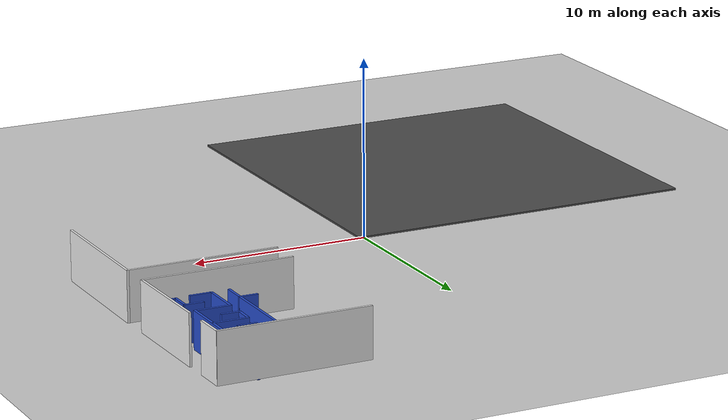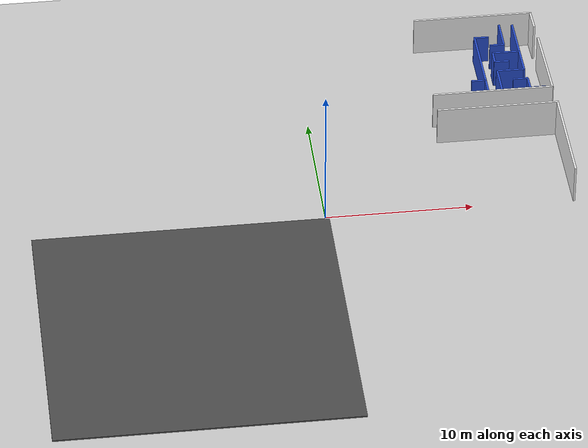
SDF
<sdf version="1.7">
 <world name="default">
  <model name="ground_plane">
   <static>1</static>
   <link name="link">
    <collision name="collision">
     <geometry><plane><normal>0 0 1</normal><size>100 100</size></plane></geometry>
     <surface><friction><ode><mu>100</mu><mu2>50</mu2></ode></friction></surface>
    </collision>
    <visual name="visual">
     <cast_shadows>0</cast_shadows>
     <geometry><plane><normal>0 0 1</normal><size>100 100</size></plane></geometry>
     <material>
      <script><uri>file://media/materials/scripts/gazebo.material</uri><name>Gazebo/Grey</name></script>
     </material>
    </visual>
    <velocity_decay><linear>0</linear><angular>0</angular></velocity_decay>
   </link>
  </model>
  <model name="asphalt_plane">
   <static>1</static>
   <link name="link">
    <collision name="collision"><geometry><box><size>20 20 0.1</size></box></geometry></collision>
    <visual name="visual">
     <cast_shadows>0</cast_shadows>
     <geometry><box><size>20 20 0.1</size></box></geometry>
     <material>
      <script>
       <uri>model://asphalt_plane/materials/scripts</uri>
       <uri>model://asphalt_plane/materials/textures</uri>
       <name>vrc/asphalt</name>
      </script>
     </material>
    </visual>
   </link>
   <pose>-9.73878 -10.1135 0 0 -0 0</pose>
  </model>
  <model name="white_wall1_clone">
   <link name="link">
    <inertial>
     <mass>1</mass>
     <inertia>
      <ixx>0.166667</ixx>
      <ixy>0</ixy>
      <ixz>0</ixz>
      <iyy>0.166667</iyy>
      <iyz>0</iyz>
      <izz>0.166667</izz>
     </inertia>
    </inertial>
    <visual name="visual">
     <geometry><box><size>7.516 0.139088 2.78993</size></box></geometry>
     <material>
      <script><name>Gazebo/White</name><uri>file://media/materials/scripts/gazebo.material</uri></script>
      <shader type="vertex"><normal_map>__default__</normal_map></shader>
      <ambient>1 1 1 1</ambient>
      <diffuse>1 1 1 1</diffuse>
      <specular>0 0 0 1</specular>
      <emissive>0 0 0 1</emissive>
     </material>
    </visual>
    <collision name="collision">
     <geometry><box><size>7.516 0.139088 2.78993</size></box></geometry>
     <surface>
      <friction>
       <ode><mu>1</mu><mu2>1</mu2><fdir1>0 0 0</fdir1><slip1>0</slip1><slip2>0</slip2></ode>
       <torsional>
        <coefficient>1</coefficient>
        <patch_radius>0</patch_radius>
        <surface_radius>0</surface_radius>
        <use_patch_radius>1</use_patch_radius>
        <ode><slip>0</slip></ode>
       </torsional>
      </friction>
      <bounce><restitution_coefficient>0</restitution_coefficient><threshold>1e+06</threshold></bounce>
      <contact>
       <collide_without_contact>0</collide_without_contact>
       <collide_without_contact_bitmask>1</collide_without_contact_bitmask>
       <collide_bitmask>1</collide_bitmask>
       <ode>
        <soft_cfm>0</soft_cfm>
        <soft_erp>0.2</soft_erp>
        <kp>1e+13</kp>
        <kd>1</kd>
        <max_vel>0.01</max_vel>
        <min_depth>0</min_depth>
       </ode>
       <bullet>
        <split_impulse>1</split_impulse>
        <split_impulse_penetration_threshold>-0.01</split_impulse_penetration_threshold>
        <soft_cfm>0</soft_cfm>
        <soft_erp>0.2</soft_erp>
        <kp>1e+13</kp>
        <kd>1</kd>
       </bullet>
      </contact>
     </surface>
    </collision>
   </link>
   <static>1</static>
   <pose>16.8632 3.54144 1.43994 -4e-06 -1e-06 -1.57184</pose>
  </model>
  <model name="white_wall8_clone_clone">
   <link name="link">
    <inertial>
     <mass>1</mass>
     <inertia>
      <ixx>0.166667</ixx>
      <ixy>0</ixy>
      <ixz>0</ixz>
      <iyy>0.166667</iyy>
      <iyz>0</iyz>
      <izz>0.166667</izz>
     </inertia>
    </inertial>
    <visual name="visual">
     <geometry><box><size>8.30741 0.139088 2.78993</size></box></geometry>
     <material>
      <script><name>Gazebo/White</name><uri>file://media/materials/scripts/gazebo.material</uri></script>
      <shader type="vertex"><normal_map>__default__</normal_map></shader>
      <ambient>1 1 1 1</ambient>
      <diffuse>1 1 1 1</diffuse>
      <specular>0 0 0 1</specular>
      <emissive>0 0 0 1</emissive>
     </material>
    </visual>
    <collision name="collision">
     <geometry><box><size>8.30741 0.139088 2.78993</size></box></geometry>
     <surface>
      <friction>
       <ode><mu>1</mu><mu2>1</mu2><fdir1>0 0 0</fdir1><slip1>0</slip1><slip2>0</slip2></ode>
       <torsional>
        <coefficient>1</coefficient>
        <patch_radius>0</patch_radius>
        <surface_radius>0</surface_radius>
        <use_patch_radius>1</use_patch_radius>
        <ode><slip>0</slip></ode>
       </torsional>
      </friction>
      <bounce><restitution_coefficient>0</restitution_coefficient><threshold>1e+06</threshold></bounce>
      <contact>
       <collide_without_contact>0</collide_without_contact>
       <collide_without_contact_bitmask>1</collide_without_contact_bitmask>
       <collide_bitmask>1</collide_bitmask>
       <ode>
        <soft_cfm>0</soft_cfm>
        <soft_erp>0.2</soft_erp>
        <kp>1e+13</kp>
        <kd>1</kd>
        <max_vel>0.01</max_vel>
        <min_depth>0</min_depth>
       </ode>
       <bullet>
        <split_impulse>1</split_impulse>
        <split_impulse_penetration_threshold>-0.01</split_impulse_penetration_threshold>
        <soft_cfm>0</soft_cfm>
        <soft_erp>0.2</soft_erp>
        <kp>1e+13</kp>
        <kd>1</kd>
       </bullet>
      </contact>
     </surface>
    </collision>
   </link>
   <static>1</static>
   <pose>12.7274 7.22395 1.43997 -1e-06 4e-06 -1.6e-05</pose>
  </model>
  <model name="white_wall3_clone_clone_1_clone_0_clone">
   <link name="link">
    <inertial>
     <mass>1</mass>
     <inertia>
      <ixx>0.166667</ixx>
      <ixy>0</ixy>
      <ixz>0</ixz>
      <iyy>0.166667</iyy>
      <iyz>0</iyz>
      <izz>0.166667</izz>
     </inertia>
    </inertial>
    <visual name="visual">
     <geometry><box><size>1.77743 0.139088 2.78993</size></box></geometry>
     <material>
      <script><name>Gazebo/White</name><uri>file://media/materials/scripts/gazebo.material</uri></script>
      <shader type="vertex"><normal_map>__default__</normal_map></shader>
      <ambient>1 1 1 1</ambient>
      <diffuse>1 1 1 1</diffuse>
      <specular>0 0 0 1</specular>
      <emissive>0 0 0 1</emissive>
     </material>
    </visual>
    <collision name="collision">
     <geometry><box><size>1.77743 0.139088 2.78993</size></box></geometry>
     <surface>
      <friction>
       <ode><mu>1</mu><mu2>1</mu2><fdir1>0 0 0</fdir1><slip1>0</slip1><slip2>0</slip2></ode>
       <torsional>
        <coefficient>1</coefficient>
        <patch_radius>0</patch_radius>
        <surface_radius>0</surface_radius>
        <use_patch_radius>1</use_patch_radius>
        <ode><slip>0</slip></ode>
       </torsional>
      </friction>
      <bounce><restitution_coefficient>0</restitution_coefficient><threshold>1e+06</threshold></bounce>
      <contact>
       <collide_without_contact>0</collide_without_contact>
       <collide_without_contact_bitmask>1</collide_without_contact_bitmask>
       <collide_bitmask>1</collide_bitmask>
       <ode>
        <soft_cfm>0</soft_cfm>
        <soft_erp>0.2</soft_erp>
        <kp>1e+13</kp>
        <kd>1</kd>
        <max_vel>0.01</max_vel>
        <min_depth>0</min_depth>
       </ode>
       <bullet>
        <split_impulse>1</split_impulse>
        <split_impulse_penetration_threshold>-0.01</split_impulse_penetration_threshold>
        <soft_cfm>0</soft_cfm>
        <soft_erp>0.2</soft_erp>
        <kp>1e+13</kp>
        <kd>1</kd>
       </bullet>
      </contact>
     </surface>
    </collision>
   </link>
   <static>1</static>
   <pose>16.6488 16.7754 1.43995 -4e-06 -1e-06 -1.5551</pose>
  </model>
  <model name="white_wall14">
   <link name="link">
    <inertial>
     <mass>1</mass>
     <inertia>
      <ixx>0.166667</ixx>
      <ixy>0</ixy>
      <ixz>0</ixz>
      <iyy>0.166667</iyy>
      <iyz>0</iyz>
      <izz>0.166667</izz>
     </inertia>
    </inertial>
    <visual name="visual">
     <geometry><box><size>5.71848 0.139088 2.78993</size></box></geometry>
     <material>
      <script><name>Gazebo/White</name><uri>file://media/materials/scripts/gazebo.material</uri></script>
      <shader type="vertex"><normal_map>__default__</normal_map></shader>
      <ambient>1 1 1 1</ambient>
      <diffuse>1 1 1 1</diffuse>
      <specular>0 0 0 1</specular>
      <emissive>0 0 0 1</emissive>
     </material>
    </visual>
    <collision name="collision">
     <geometry><box><size>5.71848 0.139088 2.78993</size></box></geometry>
     <surface>
      <friction>
       <ode><mu>1</mu><mu2>1</mu2><fdir1>0 0 0</fdir1><slip1>0</slip1><slip2>0</slip2></ode>
       <torsional>
        <coefficient>1</coefficient>
        <patch_radius>0</patch_radius>
        <surface_radius>0</surface_radius>
        <use_patch_radius>1</use_patch_radius>
        <ode><slip>0</slip></ode>
       </torsional>
      </friction>
      <bounce><restitution_coefficient>0</restitution_coefficient><threshold>1e+06</threshold></bounce>
      <contact>
       <collide_without_contact>0</collide_without_contact>
       <collide_without_contact_bitmask>1</collide_without_contact_bitmask>
       <collide_bitmask>1</collide_bitmask>
       <ode>
        <soft_cfm>0</soft_cfm>
        <soft_erp>0.2</soft_erp>
        <kp>1e+13</kp>
        <kd>1</kd>
        <max_vel>0.01</max_vel>
        <min_depth>0</min_depth>
       </ode>
       <bullet>
        <split_impulse>1</split_impulse>
        <split_impulse_penetration_threshold>-0.01</split_impulse_penetration_threshold>
        <soft_cfm>0</soft_cfm>
        <soft_erp>0.2</soft_erp>
        <kp>1e+13</kp>
        <kd>1</kd>
       </bullet>
      </contact>
     </surface>
    </collision>
   </link>
   <static>1</static>
   <pose>16.7586 11.7645 1.43994 -4e-06 -1e-06 -1.55521</pose>
  </model>
  <model name="white_wall8_clone_clone_clone">
   <link name="link">
    <inertial>
     <mass>1</mass>
     <inertia>
      <ixx>0.166667</ixx>
      <ixy>0</ixy>
      <ixz>0</ixz>
      <iyy>0.166667</iyy>
      <iyz>0</iyz>
      <izz>0.166667</izz>
     </inertia>
    </inertial>
    <visual name="visual">
     <geometry><box><size>8.30741 0.139088 2.78993</size></box></geometry>
     <material>
      <script><name>Gazebo/White</name><uri>file://media/materials/scripts/gazebo.material</uri></script>
      <shader type="vertex"><normal_map>__default__</normal_map></shader>
      <ambient>1 1 1 1</ambient>
      <diffuse>1 1 1 1</diffuse>
      <specular>0 0 0 1</specular>
      <emissive>0 0 0 1</emissive>
     </material>
    </visual>
    <collision name="collision">
     <geometry><box><size>8.30741 0.139088 2.78993</size></box></geometry>
     <surface>
      <friction>
       <ode><mu>1</mu><mu2>1</mu2><fdir1>0 0 0</fdir1><slip1>0</slip1><slip2>0</slip2></ode>
       <torsional>
        <coefficient>1</coefficient>
        <patch_radius>0</patch_radius>
        <surface_radius>0</surface_radius>
        <use_patch_radius>1</use_patch_radius>
        <ode><slip>0</slip></ode>
       </torsional>
      </friction>
      <bounce><restitution_coefficient>0</restitution_coefficient><threshold>1e+06</threshold></bounce>
      <contact>
       <collide_without_contact>0</collide_without_contact>
       <collide_without_contact_bitmask>1</collide_without_contact_bitmask>
       <collide_bitmask>1</collide_bitmask>
       <ode>
        <soft_cfm>0</soft_cfm>
        <soft_erp>0.2</soft_erp>
        <kp>1e+13</kp>
        <kd>1</kd>
        <max_vel>0.01</max_vel>
        <min_depth>0</min_depth>
       </ode>
       <bullet>
        <split_impulse>1</split_impulse>
        <split_impulse_penetration_threshold>-0.01</split_impulse_penetration_threshold>
        <soft_cfm>0</soft_cfm>
        <soft_erp>0.2</soft_erp>
        <kp>1e+13</kp>
        <kd>1</kd>
       </bullet>
      </contact>
     </surface>
    </collision>
   </link>
   <static>1</static>
   <pose>12.6764 8.97226 1.43997 -1e-06 4e-06 -1.6e-05</pose>
  </model>
  <model name="white_wall8_clone_clone_clone_0">
   <link name="link">
    <inertial>
     <mass>1</mass>
     <inertia>
      <ixx>0.166667</ixx>
      <ixy>0</ixy>
      <ixz>0</ixz>
      <iyy>0.166667</iyy>
      <iyz>0</iyz>
      <izz>0.166667</izz>
     </inertia>
    </inertial>
    <visual name="visual">
     <geometry><box><size>8.30741 0.139088 2.78993</size></box></geometry>
     <material>
      <script><name>Gazebo/White</name><uri>file://media/materials/scripts/gazebo.material</uri></script>
      <shader type="vertex"><normal_map>__default__</normal_map></shader>
      <ambient>1 1 1 1</ambient>
      <diffuse>1 1 1 1</diffuse>
      <specular>0 0 0 1</specular>
      <emissive>0 0 0 1</emissive>
     </material>
    </visual>
    <collision name="collision">
     <geometry><box><size>8.30741 0.139088 2.78993</size></box></geometry>
     <surface>
      <friction>
       <ode><mu>1</mu><mu2>1</mu2><fdir1>0 0 0</fdir1><slip1>0</slip1><slip2>0</slip2></ode>
       <torsional>
        <coefficient>1</coefficient>
        <patch_radius>0</patch_radius>
        <surface_radius>0</surface_radius>
        <use_patch_radius>1</use_patch_radius>
        <ode><slip>0</slip></ode>
       </torsional>
      </friction>
      <bounce><restitution_coefficient>0</restitution_coefficient><threshold>1e+06</threshold></bounce>
      <contact>
       <collide_without_contact>0</collide_without_contact>
       <collide_without_contact_bitmask>1</collide_without_contact_bitmask>
       <collide_bitmask>1</collide_bitmask>
       <ode>
        <soft_cfm>0</soft_cfm>
        <soft_erp>0.2</soft_erp>
        <kp>1e+13</kp>
        <kd>1</kd>
        <max_vel>0.01</max_vel>
        <min_depth>0</min_depth>
       </ode>
       <bullet>
        <split_impulse>1</split_impulse>
        <split_impulse_penetration_threshold>-0.01</split_impulse_penetration_threshold>
        <soft_cfm>0</soft_cfm>
        <soft_erp>0.2</soft_erp>
        <kp>1e+13</kp>
        <kd>1</kd>
       </bullet>
      </contact>
     </surface>
    </collision>
   </link>
   <static>1</static>
   <pose>12.5374 17.6 1.43997 -1e-06 4e-06 -1.6e-05</pose>
  </model>
  <model name="blue_wall_1_01_clone_clone">
   <link name="link">
    <inertial>
     <mass>1.23974</mass>
     <inertia>
      <ixx>1.75708</ixx>
      <ixy>0</ixy>
      <ixz>0</ixz>
      <iyy>0.935051</iyy>
      <iyz>0</iyz>
      <izz>0.826375</izz>
     </inertia>
    </inertial>
    <visual name="visual">
     <geometry><box><size>0.145074 4.87759 3.00495</size></box></geometry>
     <material>
      <script><name>Gazebo/Blue</name><uri>file://media/materials/scripts/gazebo.material</uri></script>
      <shader type="vertex"><normal_map>__default__</normal_map></shader>
      <ambient>0 0 1 1</ambient>
      <diffuse>0 0 1 1</diffuse>
      <specular>0.1 0.1 0.1 1</specular>
      <emissive>0 0 0 1</emissive>
     </material>
    </visual>
    <collision name="collision">
     <geometry><box><size>0.145074 4.87759 3.00495</size></box></geometry>
     <surface>
      <friction>
       <ode><mu>1</mu><mu2>1</mu2><fdir1>0 0 0</fdir1><slip1>0</slip1><slip2>0</slip2></ode>
       <torsional>
        <coefficient>1</coefficient>
        <patch_radius>0</patch_radius>
        <surface_radius>0</surface_radius>
        <use_patch_radius>1</use_patch_radius>
        <ode><slip>0</slip></ode>
       </torsional>
      </friction>
      <bounce><restitution_coefficient>0</restitution_coefficient><threshold>1e+06</threshold></bounce>
      <contact>
       <collide_without_contact>0</collide_without_contact>
       <collide_without_contact_bitmask>1</collide_without_contact_bitmask>
       <collide_bitmask>1</collide_bitmask>
       <ode>
        <soft_cfm>0</soft_cfm>
        <soft_erp>0.2</soft_erp>
        <kp>1e+13</kp>
        <kd>1</kd>
        <max_vel>0.01</max_vel>
        <min_depth>0</min_depth>
       </ode>
       <bullet>
        <split_impulse>1</split_impulse>
        <split_impulse_penetration_threshold>-0.01</split_impulse_penetration_threshold>
        <soft_cfm>0</soft_cfm>
        <soft_erp>0.2</soft_erp>
        <kp>1e+13</kp>
        <kd>1</kd>
       </bullet>
      </contact>
     </surface>
    </collision>
   </link>
   <static>1</static>
   <pose>12.5229 13.7327 0.5 0 -0 0.007046</pose>
  </model>
  <model name="blue_wall_161_clone_clone">
   <link name="link">
    <inertial>
     <mass>0.958307</mass>
     <inertia>
      <ixx>0.810551</ixx>
      <ixy>0</ixy>
      <ixz>0</ixz>
      <iyy>0.722785</iyy>
      <iyz>0</iyz>
      <izz>0.0911277</izz>
     </inertia>
    </inertial>
    <visual name="visual">
     <geometry><box><size>0.145074 1.05833 3.00495</size></box></geometry>
     <material>
      <script><name>Gazebo/Blue</name><uri>file://media/materials/scripts/gazebo.material</uri></script>
      <shader type="vertex"><normal_map>__default__</normal_map></shader>
      <ambient>0 0 1 1</ambient>
      <diffuse>0 0 1 1</diffuse>
      <specular>0.1 0.1 0.1 1</specular>
      <emissive>0 0 0 1</emissive>
     </material>
    </visual>
    <collision name="collision">
     <geometry><box><size>0.145074 1.05833 3.00495</size></box></geometry>
     <surface>
      <friction>
       <ode><mu>1</mu><mu2>1</mu2><fdir1>0 0 0</fdir1><slip1>0</slip1><slip2>0</slip2></ode>
       <torsional>
        <coefficient>1</coefficient>
        <patch_radius>0</patch_radius>
        <surface_radius>0</surface_radius>
        <use_patch_radius>1</use_patch_radius>
        <ode><slip>0</slip></ode>
       </torsional>
      </friction>
      <bounce><restitution_coefficient>0</restitution_coefficient><threshold>1e+06</threshold></bounce>
      <contact>
       <collide_without_contact>0</collide_without_contact>
       <collide_without_contact_bitmask>1</collide_without_contact_bitmask>
       <collide_bitmask>1</collide_bitmask>
       <ode>
        <soft_cfm>0</soft_cfm>
        <soft_erp>0.2</soft_erp>
        <kp>1e+13</kp>
        <kd>1</kd>
        <max_vel>0.01</max_vel>
        <min_depth>0</min_depth>
       </ode>
       <bullet>
        <split_impulse>1</split_impulse>
        <split_impulse_penetration_threshold>-0.01</split_impulse_penetration_threshold>
        <soft_cfm>0</soft_cfm>
        <soft_erp>0.2</soft_erp>
        <kp>1e+13</kp>
        <kd>1</kd>
       </bullet>
      </contact>
     </surface>
    </collision>
   </link>
   <static>1</static>
   <pose>12.0857 11.2765 0.5 0 -0 1.55679</pose>
  </model>
  <model name="blue_wall_161_clone_0_clone">
   <link name="link">
    <inertial>
     <mass>0.958307</mass>
     <inertia>
      <ixx>0.810551</ixx>
      <ixy>0</ixy>
      <ixz>0</ixz>
      <iyy>0.722785</iyy>
      <iyz>0</iyz>
      <izz>0.0911277</izz>
     </inertia>
    </inertial>
    <visual name="visual">
     <geometry><box><size>0.145074 1.05833 3.00495</size></box></geometry>
     <material>
      <script><name>Gazebo/Blue</name><uri>file://media/materials/scripts/gazebo.material</uri></script>
      <shader type="vertex"><normal_map>__default__</normal_map></shader>
      <ambient>0 0 1 1</ambient>
      <diffuse>0 0 1 1</diffuse>
      <specular>0.1 0.1 0.1 1</specular>
      <emissive>0 0 0 1</emissive>
     </material>
    </visual>
    <collision name="collision">
     <geometry><box><size>0.145074 1.05833 3.00495</size></box></geometry>
     <surface>
      <friction>
       <ode><mu>1</mu><mu2>1</mu2><fdir1>0 0 0</fdir1><slip1>0</slip1><slip2>0</slip2></ode>
       <torsional>
        <coefficient>1</coefficient>
        <patch_radius>0</patch_radius>
        <surface_radius>0</surface_radius>
        <use_patch_radius>1</use_patch_radius>
        <ode><slip>0</slip></ode>
       </torsional>
      </friction>
      <bounce><restitution_coefficient>0</restitution_coefficient><threshold>1e+06</threshold></bounce>
      <contact>
       <collide_without_contact>0</collide_without_contact>
       <collide_without_contact_bitmask>1</collide_without_contact_bitmask>
       <collide_bitmask>1</collide_bitmask>
       <ode>
        <soft_cfm>0</soft_cfm>
        <soft_erp>0.2</soft_erp>
        <kp>1e+13</kp>
        <kd>1</kd>
        <max_vel>0.01</max_vel>
        <min_depth>0</min_depth>
       </ode>
       <bullet>
        <split_impulse>1</split_impulse>
        <split_impulse_penetration_threshold>-0.01</split_impulse_penetration_threshold>
        <soft_cfm>0</soft_cfm>
        <soft_erp>0.2</soft_erp>
        <kp>1e+13</kp>
        <kd>1</kd>
       </bullet>
      </contact>
     </surface>
    </collision>
   </link>
   <static>1</static>
   <pose>12.9711 16.1912 0.5 0 -0 1.55679</pose>
  </model>
  <model name="blue_wall_2_0_clone_0_clone_clone_clone_clone_clone">
   <link name="link">
    <inertial>
     <mass>1.23974</mass>
     <inertia>
      <ixx>1.75708</ixx>
      <ixy>0</ixy>
      <ixz>0</ixz>
      <iyy>0.935051</iyy>
      <iyz>0</iyz>
      <izz>0.826375</izz>
     </inertia>
    </inertial>
    <visual name="visual">
     <geometry><box><size>0.145074 2.28839 3.00495</size></box></geometry>
     <material>
      <script><name>Gazebo/Blue</name><uri>file://media/materials/scripts/gazebo.material</uri></script>
      <shader type="vertex"><normal_map>__default__</normal_map></shader>
      <ambient>0 0 1 1</ambient>
      <diffuse>0 0 1 1</diffuse>
      <specular>0.1 0.1 0.1 1</specular>
      <emissive>0 0 0 1</emissive>
     </material>
    </visual>
    <collision name="collision">
     <geometry><box><size>0.145074 2.28839 3.00495</size></box></geometry>
     <surface>
      <friction>
       <ode><mu>1</mu><mu2>1</mu2><fdir1>0 0 0</fdir1><slip1>0</slip1><slip2>0</slip2></ode>
       <torsional>
        <coefficient>1</coefficient>
        <patch_radius>0</patch_radius>
        <surface_radius>0</surface_radius>
        <use_patch_radius>1</use_patch_radius>
        <ode><slip>0</slip></ode>
       </torsional>
      </friction>
      <bounce><restitution_coefficient>0</restitution_coefficient><threshold>1e+06</threshold></bounce>
      <contact>
       <collide_without_contact>0</collide_without_contact>
       <collide_without_contact_bitmask>1</collide_without_contact_bitmask>
       <collide_bitmask>1</collide_bitmask>
       <ode>
        <soft_cfm>0</soft_cfm>
        <soft_erp>0.2</soft_erp>
        <kp>1e+13</kp>
        <kd>1</kd>
        <max_vel>0.01</max_vel>
        <min_depth>0</min_depth>
       </ode>
       <bullet>
        <split_impulse>1</split_impulse>
        <split_impulse_penetration_threshold>-0.01</split_impulse_penetration_threshold>
        <soft_cfm>0</soft_cfm>
        <soft_erp>0.2</soft_erp>
        <kp>1e+13</kp>
        <kd>1</kd>
       </bullet>
      </contact>
     </surface>
    </collision>
   </link>
   <static>1</static>
   <pose>14.4301 16.3777 0.5 0 -0 0</pose>
  </model>
  <model name="blue_wall_161_clone_0_clone_clone">
   <link name="link">
    <inertial>
     <mass>0.958307</mass>
     <inertia>
      <ixx>0.810551</ixx>
      <ixy>0</ixy>
      <ixz>0</ixz>
      <iyy>0.722785</iyy>
      <iyz>0</iyz>
      <izz>0.0911277</izz>
     </inertia>
    </inertial>
    <visual name="visual">
     <geometry><box><size>0.145074 1.05833 3.00495</size></box></geometry>
     <material>
      <script><name>Gazebo/Blue</name><uri>file://media/materials/scripts/gazebo.material</uri></script>
      <shader type="vertex"><normal_map>__default__</normal_map></shader>
      <ambient>0 0 1 1</ambient>
      <diffuse>0 0 1 1</diffuse>
      <specular>0.1 0.1 0.1 1</specular>
      <emissive>0 0 0 1</emissive>
     </material>
    </visual>
    <collision name="collision">
     <geometry><box><size>0.145074 1.05833 3.00495</size></box></geometry>
     <surface>
      <friction>
       <ode><mu>1</mu><mu2>1</mu2><fdir1>0 0 0</fdir1><slip1>0</slip1><slip2>0</slip2></ode>
       <torsional>
        <coefficient>1</coefficient>
        <patch_radius>0</patch_radius>
        <surface_radius>0</surface_radius>
        <use_patch_radius>1</use_patch_radius>
        <ode><slip>0</slip></ode>
       </torsional>
      </friction>
      <bounce><restitution_coefficient>0</restitution_coefficient><threshold>1e+06</threshold></bounce>
      <contact>
       <collide_without_contact>0</collide_without_contact>
       <collide_without_contact_bitmask>1</collide_without_contact_bitmask>
       <collide_bitmask>1</collide_bitmask>
       <ode>
        <soft_cfm>0</soft_cfm>
        <soft_erp>0.2</soft_erp>
        <kp>1e+13</kp>
        <kd>1</kd>
        <max_vel>0.01</max_vel>
        <min_depth>0</min_depth>
       </ode>
       <bullet>
        <split_impulse>1</split_impulse>
        <split_impulse_penetration_threshold>-0.01</split_impulse_penetration_threshold>
        <soft_cfm>0</soft_cfm>
        <soft_erp>0.2</soft_erp>
        <kp>1e+13</kp>
        <kd>1</kd>
       </bullet>
      </contact>
     </surface>
    </collision>
   </link>
   <static>1</static>
   <pose>13.9611 15.2156 0.5 0 -0 1.55679</pose>
  </model>
  <model name="blue_wall_211">
   <link name="link">
    <inertial>
     <mass>0.855287</mass>
     <inertia>
      <ixx>0.908968</ixx>
      <ixy>0</ixy>
      <ixz>0</ixz>
      <iyy>0.645084</iyy>
      <iyz>0</iyz>
      <izz>0.266884</izz>
     </inertia>
    </inertial>
    <visual name="visual">
     <geometry><box><size>0.145074 1.92962 3.00495</size></box></geometry>
     <material>
      <script><name>Gazebo/Blue</name><uri>file://media/materials/scripts/gazebo.material</uri></script>
      <shader type="vertex"><normal_map>__default__</normal_map></shader>
      <ambient>0 0 1 1</ambient>
      <diffuse>0 0 1 1</diffuse>
      <specular>0.1 0.1 0.1 1</specular>
      <emissive>0 0 0 1</emissive>
     </material>
    </visual>
    <collision name="collision">
     <geometry><box><size>0.145074 1.92962 3.00495</size></box></geometry>
     <surface>
      <friction>
       <ode><mu>1</mu><mu2>1</mu2><fdir1>0 0 0</fdir1><slip1>0</slip1><slip2>0</slip2></ode>
       <torsional>
        <coefficient>1</coefficient>
        <patch_radius>0</patch_radius>
        <surface_radius>0</surface_radius>
        <use_patch_radius>1</use_patch_radius>
        <ode><slip>0</slip></ode>
       </torsional>
      </friction>
      <bounce><restitution_coefficient>0</restitution_coefficient><threshold>1e+06</threshold></bounce>
      <contact>
       <collide_without_contact>0</collide_without_contact>
       <collide_without_contact_bitmask>1</collide_without_contact_bitmask>
       <collide_bitmask>1</collide_bitmask>
       <ode>
        <soft_cfm>0</soft_cfm>
        <soft_erp>0.2</soft_erp>
        <kp>1e+13</kp>
        <kd>1</kd>
        <max_vel>0.01</max_vel>
        <min_depth>0</min_depth>
       </ode>
       <bullet>
        <split_impulse>1</split_impulse>
        <split_impulse_penetration_threshold>-0.01</split_impulse_penetration_threshold>
        <soft_cfm>0</soft_cfm>
        <soft_erp>0.2</soft_erp>
        <kp>1e+13</kp>
        <kd>1</kd>
       </bullet>
      </contact>
     </surface>
    </collision>
   </link>
   <static>1</static>
   <pose>14.4153 14.3219 0.5 0 -0 1.55679</pose>
  </model>
  <model name="blue_wall_161_clone_0_clone_clone_clone">
   <link name="link">
    <inertial>
     <mass>0.958307</mass>
     <inertia>
      <ixx>0.810551</ixx>
      <ixy>0</ixy>
      <ixz>0</ixz>
      <iyy>0.722785</iyy>
      <iyz>0</iyz>
      <izz>0.0911277</izz>
     </inertia>
    </inertial>
    <visual name="visual">
     <geometry><box><size>0.145074 1.05833 3.00495</size></box></geometry>
     <material>
      <script><name>Gazebo/Blue</name><uri>file://media/materials/scripts/gazebo.material</uri></script>
      <shader type="vertex"><normal_map>__default__</normal_map></shader>
      <ambient>0 0 1 1</ambient>
      <diffuse>0 0 1 1</diffuse>
      <specular>0.1 0.1 0.1 1</specular>
      <emissive>0 0 0 1</emissive>
     </material>
    </visual>
    <collision name="collision">
     <geometry><box><size>0.145074 1.05833 3.00495</size></box></geometry>
     <surface>
      <friction>
       <ode><mu>1</mu><mu2>1</mu2><fdir1>0 0 0</fdir1><slip1>0</slip1><slip2>0</slip2></ode>
       <torsional>
        <coefficient>1</coefficient>
        <patch_radius>0</patch_radius>
        <surface_radius>0</surface_radius>
        <use_patch_radius>1</use_patch_radius>
        <ode><slip>0</slip></ode>
       </torsional>
      </friction>
      <bounce><restitution_coefficient>0</restitution_coefficient><threshold>1e+06</threshold></bounce>
      <contact>
       <collide_without_contact>0</collide_without_contact>
       <collide_without_contact_bitmask>1</collide_without_contact_bitmask>
       <collide_bitmask>1</collide_bitmask>
       <ode>
        <soft_cfm>0</soft_cfm>
        <soft_erp>0.2</soft_erp>
        <kp>1e+13</kp>
        <kd>1</kd>
        <max_vel>0.01</max_vel>
        <min_depth>0</min_depth>
       </ode>
       <bullet>
        <split_impulse>1</split_impulse>
        <split_impulse_penetration_threshold>-0.01</split_impulse_penetration_threshold>
        <soft_cfm>0</soft_cfm>
        <soft_erp>0.2</soft_erp>
        <kp>1e+13</kp>
        <kd>1</kd>
       </bullet>
      </contact>
     </surface>
    </collision>
   </link>
   <static>1</static>
   <pose>13.963 13.2926 0.5 0 -0 1.55679</pose>
  </model>
  <model name="blue_wall_211_clone">
   <link name="link">
    <inertial>
     <mass>0.855287</mass>
     <inertia>
      <ixx>0.908968</ixx>
      <ixy>0</ixy>
      <ixz>0</ixz>
      <iyy>0.645084</iyy>
      <iyz>0</iyz>
      <izz>0.266884</izz>
     </inertia>
    </inertial>
    <visual name="visual">
     <geometry><box><size>0.145074 1.92962 3.00495</size></box></geometry>
     <material>
      <script><name>Gazebo/Blue</name><uri>file://media/materials/scripts/gazebo.material</uri></script>
      <shader type="vertex"><normal_map>__default__</normal_map></shader>
      <ambient>0 0 1 1</ambient>
      <diffuse>0 0 1 1</diffuse>
      <specular>0.1 0.1 0.1 1</specular>
      <emissive>0 0 0 1</emissive>
     </material>
    </visual>
    <collision name="collision">
     <geometry><box><size>0.145074 1.92962 3.00495</size></box></geometry>
     <surface>
      <friction>
       <ode><mu>1</mu><mu2>1</mu2><fdir1>0 0 0</fdir1><slip1>0</slip1><slip2>0</slip2></ode>
       <torsional>
        <coefficient>1</coefficient>
        <patch_radius>0</patch_radius>
        <surface_radius>0</surface_radius>
        <use_patch_radius>1</use_patch_radius>
        <ode><slip>0</slip></ode>
       </torsional>
      </friction>
      <bounce><restitution_coefficient>0</restitution_coefficient><threshold>1e+06</threshold></bounce>
      <contact>
       <collide_without_contact>0</collide_without_contact>
       <collide_without_contact_bitmask>1</collide_without_contact_bitmask>
       <collide_bitmask>1</collide_bitmask>
       <ode>
        <soft_cfm>0</soft_cfm>
        <soft_erp>0.2</soft_erp>
        <kp>1e+13</kp>
        <kd>1</kd>
        <max_vel>0.01</max_vel>
        <min_depth>0</min_depth>
       </ode>
       <bullet>
        <split_impulse>1</split_impulse>
        <split_impulse_penetration_threshold>-0.01</split_impulse_penetration_threshold>
        <soft_cfm>0</soft_cfm>
        <soft_erp>0.2</soft_erp>
        <kp>1e+13</kp>
        <kd>1</kd>
       </bullet>
      </contact>
     </surface>
    </collision>
   </link>
   <static>1</static>
   <pose>14.4016 12.239 0.5 0 -0 1.55679</pose>
  </model>
  <model name="blue_wall_1_01_clone1">
   <link name="link">
    <inertial>
     <mass>1.33974</mass>
     <inertia><ixx>4.11002</ixx><ixy>0</ixy><ixz>0</ixz><iyy>1.01047</iyy><iyz>0</iyz><izz>3.10424</izz></inertia>
    </inertial>
    <pose>0 -0.329668 0 0 -0 0</pose>
    <visual name="visual">
     <geometry><box><size>0.145074 5.27102 3.00495</size></box></geometry>
     <material>
      <script><name>Gazebo/Blue</name><uri>file://media/materials/scripts/gazebo.material</uri></script>
      <shader type="vertex"><normal_map>__default__</normal_map></shader>
      <ambient>0 0 1 1</ambient>
      <diffuse>0 0 1 1</diffuse>
      <specular>0.1 0.1 0.1 1</specular>
      <emissive>0 0 0 1</emissive>
     </material>
    </visual>
    <collision name="collision">
     <geometry><box><size>0.145074 5.27102 3.00495</size></box></geometry>
     <surface>
      <friction>
       <ode><mu>1</mu><mu2>1</mu2><fdir1>0 0 0</fdir1><slip1>0</slip1><slip2>0</slip2></ode>
       <torsional>
        <coefficient>1</coefficient>
        <patch_radius>0</patch_radius>
        <surface_radius>0</surface_radius>
        <use_patch_radius>1</use_patch_radius>
        <ode><slip>0</slip></ode>
       </torsional>
      </friction>
      <bounce><restitution_coefficient>0</restitution_coefficient><threshold>1e+06</threshold></bounce>
      <contact>
       <collide_without_contact>0</collide_without_contact>
       <collide_without_contact_bitmask>1</collide_without_contact_bitmask>
       <collide_bitmask>1</collide_bitmask>
       <ode>
        <soft_cfm>0</soft_cfm>
        <soft_erp>0.2</soft_erp>
        <kp>1e+13</kp>
        <kd>1</kd>
        <max_vel>0.01</max_vel>
        <min_depth>0</min_depth>
       </ode>
       <bullet>
        <split_impulse>1</split_impulse>
        <split_impulse_penetration_threshold>-0.01</split_impulse_penetration_threshold>
        <soft_cfm>0</soft_cfm>
        <soft_erp>0.2</soft_erp>
        <kp>1e+13</kp>
        <kd>1</kd>
       </bullet>
      </contact>
     </surface>
    </collision>
   </link>
   <static>1</static>
   <pose>15.3651 15.1102 0.5 0 -0 0.007046</pose>
  </model>
  <model name="blue_wall_161_clone_0_clone_clone_0_clone">
   <link name="link">
    <inertial>
     <mass>0.958307</mass>
     <inertia>
      <ixx>0.810551</ixx>
      <ixy>0</ixy>
      <ixz>0</ixz>
      <iyy>0.722785</iyy>
      <iyz>0</iyz>
      <izz>0.0911277</izz>
     </inertia>
    </inertial>
    <visual name="visual">
     <geometry><box><size>0.145074 1.05833 3.00495</size></box></geometry>
     <material>
      <script><name>Gazebo/Blue</name><uri>file://media/materials/scripts/gazebo.material</uri></script>
      <shader type="vertex"><normal_map>__default__</normal_map></shader>
      <ambient>0 0 1 1</ambient>
      <diffuse>0 0 1 1</diffuse>
      <specular>0.1 0.1 0.1 1</specular>
      <emissive>0 0 0 1</emissive>
     </material>
    </visual>
    <collision name="collision">
     <geometry><box><size>0.145074 1.05833 3.00495</size></box></geometry>
     <surface>
      <friction>
       <ode><mu>1</mu><mu2>1</mu2><fdir1>0 0 0</fdir1><slip1>0</slip1><slip2>0</slip2></ode>
       <torsional>
        <coefficient>1</coefficient>
        <patch_radius>0</patch_radius>
        <surface_radius>0</surface_radius>
        <use_patch_radius>1</use_patch_radius>
        <ode><slip>0</slip></ode>
       </torsional>
      </friction>
      <bounce><restitution_coefficient>0</restitution_coefficient><threshold>1e+06</threshold></bounce>
      <contact>
       <collide_without_contact>0</collide_without_contact>
       <collide_without_contact_bitmask>1</collide_without_contact_bitmask>
       <collide_bitmask>1</collide_bitmask>
       <ode>
        <soft_cfm>0</soft_cfm>
        <soft_erp>0.2</soft_erp>
        <kp>1e+13</kp>
        <kd>1</kd>
        <max_vel>0.01</max_vel>
        <min_depth>0</min_depth>
       </ode>
       <bullet>
        <split_impulse>1</split_impulse>
        <split_impulse_penetration_threshold>-0.01</split_impulse_penetration_threshold>
        <soft_cfm>0</soft_cfm>
        <soft_erp>0.2</soft_erp>
        <kp>1e+13</kp>
        <kd>1</kd>
       </bullet>
      </contact>
     </surface>
    </collision>
   </link>
   <static>1</static>
   <pose>13.4995 13.8234 0.5 0 0 -0.01548</pose>
  </model>
  <model name="blue_wall_201_clone_clone_clone">
   <link name="link">
    <inertial>
     <mass>1.23974</mass>
     <inertia>
      <ixx>1.75708</ixx>
      <ixy>0</ixy>
      <ixz>0</ixz>
      <iyy>0.935051</iyy>
      <iyz>0</iyz>
      <izz>0.826375</izz>
     </inertia>
    </inertial>
    <visual name="visual">
     <geometry><box><size>0.145074 1.26663 3.00495</size></box></geometry>
     <material>
      <script><name>Gazebo/Blue</name><uri>file://media/materials/scripts/gazebo.material</uri></script>
      <shader type="vertex"><normal_map>__default__</normal_map></shader>
      <ambient>0 0 1 1</ambient>
      <diffuse>0 0 1 1</diffuse>
      <specular>0.1 0.1 0.1 1</specular>
      <emissive>0 0 0 1</emissive>
     </material>
    </visual>
    <collision name="collision">
     <geometry><box><size>0.145074 1.26663 3.00495</size></box></geometry>
     <surface>
      <friction>
       <ode><mu>1</mu><mu2>1</mu2><fdir1>0 0 0</fdir1><slip1>0</slip1><slip2>0</slip2></ode>
       <torsional>
        <coefficient>1</coefficient>
        <patch_radius>0</patch_radius>
        <surface_radius>0</surface_radius>
        <use_patch_radius>1</use_patch_radius>
        <ode><slip>0</slip></ode>
       </torsional>
      </friction>
      <bounce><restitution_coefficient>0</restitution_coefficient><threshold>1e+06</threshold></bounce>
      <contact>
       <collide_without_contact>0</collide_without_contact>
       <collide_without_contact_bitmask>1</collide_without_contact_bitmask>
       <collide_bitmask>1</collide_bitmask>
       <ode>
        <soft_cfm>0</soft_cfm>
        <soft_erp>0.2</soft_erp>
        <kp>1e+13</kp>
        <kd>1</kd>
        <max_vel>0.01</max_vel>
        <min_depth>0</min_depth>
       </ode>
       <bullet>
        <split_impulse>1</split_impulse>
        <split_impulse_penetration_threshold>-0.01</split_impulse_penetration_threshold>
        <soft_cfm>0</soft_cfm>
        <soft_erp>0.2</soft_erp>
        <kp>1e+13</kp>
        <kd>1</kd>
       </bullet>
      </contact>
     </surface>
    </collision>
   </link>
   <static>1</static>
   <pose>12.5395 10.5913 0.5 0 -0 0</pose>
  </model>
  <model name="blue_wall_2_0_clone_0_clone_clone_clone_clone_clone_0">
   <link name="link">
    <inertial>
     <mass>1.23974</mass>
     <inertia>
      <ixx>1.75708</ixx>
      <ixy>0</ixy>
      <ixz>0</ixz>
      <iyy>0.935051</iyy>
      <iyz>0</iyz>
      <izz>0.826375</izz>
     </inertia>
    </inertial>
    <visual name="visual">
     <geometry><box><size>0.145074 2.28839 3.00495</size></box></geometry>
     <material>
      <script><name>Gazebo/Blue</name><uri>file://media/materials/scripts/gazebo.material</uri></script>
      <shader type="vertex"><normal_map>__default__</normal_map></shader>
      <ambient>0 0 1 1</ambient>
      <diffuse>0 0 1 1</diffuse>
      <specular>0.1 0.1 0.1 1</specular>
      <emissive>0 0 0 1</emissive>
     </material>
    </visual>
    <collision name="collision">
     <geometry><box><size>0.145074 2.28839 3.00495</size></box></geometry>
     <surface>
      <friction>
       <ode><mu>1</mu><mu2>1</mu2><fdir1>0 0 0</fdir1><slip1>0</slip1><slip2>0</slip2></ode>
       <torsional>
        <coefficient>1</coefficient>
        <patch_radius>0</patch_radius>
        <surface_radius>0</surface_radius>
        <use_patch_radius>1</use_patch_radius>
        <ode><slip>0</slip></ode>
       </torsional>
      </friction>
      <bounce><restitution_coefficient>0</restitution_coefficient><threshold>1e+06</threshold></bounce>
      <contact>
       <collide_without_contact>0</collide_without_contact>
       <collide_without_contact_bitmask>1</collide_without_contact_bitmask>
       <collide_bitmask>1</collide_bitmask>
       <ode>
        <soft_cfm>0</soft_cfm>
        <soft_erp>0.2</soft_erp>
        <kp>1e+13</kp>
        <kd>1</kd>
        <max_vel>0.01</max_vel>
        <min_depth>0</min_depth>
       </ode>
       <bullet>
        <split_impulse>1</split_impulse>
        <split_impulse_penetration_threshold>-0.01</split_impulse_penetration_threshold>
        <soft_cfm>0</soft_cfm>
        <soft_erp>0.2</soft_erp>
        <kp>1e+13</kp>
        <kd>1</kd>
       </bullet>
      </contact>
     </surface>
    </collision>
   </link>
   <static>1</static>
   <pose>13.5037 11.1098 0.5 0 -0 0</pose>
  </model>
  <model name="blue_wall_161_clone_0_clone_clone_clone_clone">
   <link name="link">
    <inertial>
     <mass>0.958307</mass>
     <inertia>
      <ixx>0.810551</ixx>
      <ixy>0</ixy>
      <ixz>0</ixz>
      <iyy>0.722785</iyy>
      <iyz>0</iyz>
      <izz>0.0911277</izz>
     </inertia>
    </inertial>
    <visual name="visual">
     <geometry><box><size>0.145074 1.05833 3.00495</size></box></geometry>
     <material>
      <script><name>Gazebo/Blue</name><uri>file://media/materials/scripts/gazebo.material</uri></script>
      <shader type="vertex"><normal_map>__default__</normal_map></shader>
      <ambient>0 0 1 1</ambient>
      <diffuse>0 0 1 1</diffuse>
      <specular>0.1 0.1 0.1 1</specular>
      <emissive>0 0 0 1</emissive>
     </material>
    </visual>
    <collision name="collision">
     <geometry><box><size>0.145074 1.05833 3.00495</size></box></geometry>
     <surface>
      <friction>
       <ode><mu>1</mu><mu2>1</mu2><fdir1>0 0 0</fdir1><slip1>0</slip1><slip2>0</slip2></ode>
       <torsional>
        <coefficient>1</coefficient>
        <patch_radius>0</patch_radius>
        <surface_radius>0</surface_radius>
        <use_patch_radius>1</use_patch_radius>
        <ode><slip>0</slip></ode>
       </torsional>
      </friction>
      <bounce><restitution_coefficient>0</restitution_coefficient><threshold>1e+06</threshold></bounce>
      <contact>
       <collide_without_contact>0</collide_without_contact>
       <collide_without_contact_bitmask>1</collide_without_contact_bitmask>
       <collide_bitmask>1</collide_bitmask>
       <ode>
        <soft_cfm>0</soft_cfm>
        <soft_erp>0.2</soft_erp>
        <kp>1e+13</kp>
        <kd>1</kd>
        <max_vel>0.01</max_vel>
        <min_depth>0</min_depth>
       </ode>
       <bullet>
        <split_impulse>1</split_impulse>
        <split_impulse_penetration_threshold>-0.01</split_impulse_penetration_threshold>
        <soft_cfm>0</soft_cfm>
        <soft_erp>0.2</soft_erp>
        <kp>1e+13</kp>
        <kd>1</kd>
       </bullet>
      </contact>
     </surface>
    </collision>
   </link>
   <static>1</static>
   <pose>14.98 11.1772 0.5 0 -0 1.55679</pose>
  </model>
  <model name="blue_wall_161_clone_0_clone_clone_0_clone_clone">
   <link name="link">
    <inertial>
     <mass>0.958307</mass>
     <inertia>
      <ixx>0.810551</ixx>
      <ixy>0</ixy>
      <ixz>0</ixz>
      <iyy>0.722785</iyy>
      <iyz>0</iyz>
      <izz>0.0911277</izz>
     </inertia>
    </inertial>
    <visual name="visual">
     <geometry><box><size>0.145074 1.05833 3.00495</size></box></geometry>
     <material>
      <script><name>Gazebo/Blue</name><uri>file://media/materials/scripts/gazebo.material</uri></script>
      <shader type="vertex"><normal_map>__default__</normal_map></shader>
      <ambient>0 0 1 1</ambient>
      <diffuse>0 0 1 1</diffuse>
      <specular>0.1 0.1 0.1 1</specular>
      <emissive>0 0 0 1</emissive>
     </material>
    </visual>
    <collision name="collision">
     <geometry><box><size>0.145074 1.05833 3.00495</size></box></geometry>
     <surface>
      <friction>
       <ode><mu>1</mu><mu2>1</mu2><fdir1>0 0 0</fdir1><slip1>0</slip1><slip2>0</slip2></ode>
       <torsional>
        <coefficient>1</coefficient>
        <patch_radius>0</patch_radius>
        <surface_radius>0</surface_radius>
        <use_patch_radius>1</use_patch_radius>
        <ode><slip>0</slip></ode>
       </torsional>
      </friction>
      <bounce><restitution_coefficient>0</restitution_coefficient><threshold>1e+06</threshold></bounce>
      <contact>
       <collide_without_contact>0</collide_without_contact>
       <collide_without_contact_bitmask>1</collide_without_contact_bitmask>
       <collide_bitmask>1</collide_bitmask>
       <ode>
        <soft_cfm>0</soft_cfm>
        <soft_erp>0.2</soft_erp>
        <kp>1e+13</kp>
        <kd>1</kd>
        <max_vel>0.01</max_vel>
        <min_depth>0</min_depth>
       </ode>
       <bullet>
        <split_impulse>1</split_impulse>
        <split_impulse_penetration_threshold>-0.01</split_impulse_penetration_threshold>
        <soft_cfm>0</soft_cfm>
        <soft_erp>0.2</soft_erp>
        <kp>1e+13</kp>
        <kd>1</kd>
       </bullet>
      </contact>
     </surface>
    </collision>
   </link>
   <static>1</static>
   <pose>15.4713 10.5833 0.5 0 -0 0.008662</pose>
  </model>
  <model name="blue_wall_201_clone_clone_clone_0_clone">
   <link name="link">
    <inertial>
     <mass>1.23974</mass>
     <inertia>
      <ixx>1.75708</ixx>
      <ixy>0</ixy>
      <ixz>0</ixz>
      <iyy>0.935051</iyy>
      <iyz>0</iyz>
      <izz>0.826375</izz>
     </inertia>
    </inertial>
    <visual name="visual">
     <geometry><box><size>0.145074 1.26663 3.00495</size></box></geometry>
     <material>
      <script><name>Gazebo/Blue</name><uri>file://media/materials/scripts/gazebo.material</uri></script>
      <shader type="vertex"><normal_map>__default__</normal_map></shader>
      <ambient>0 0 1 1</ambient>
      <diffuse>0 0 1 1</diffuse>
      <specular>0.1 0.1 0.1 1</specular>
      <emissive>0 0 0 1</emissive>
     </material>
    </visual>
    <collision name="collision">
     <geometry><box><size>0.145074 1.26663 3.00495</size></box></geometry>
     <surface>
      <friction>
       <ode><mu>1</mu><mu2>1</mu2><fdir1>0 0 0</fdir1><slip1>0</slip1><slip2>0</slip2></ode>
       <torsional>
        <coefficient>1</coefficient>
        <patch_radius>0</patch_radius>
        <surface_radius>0</surface_radius>
        <use_patch_radius>1</use_patch_radius>
        <ode><slip>0</slip></ode>
       </torsional>
      </friction>
      <bounce><restitution_coefficient>0</restitution_coefficient><threshold>1e+06</threshold></bounce>
      <contact>
       <collide_without_contact>0</collide_without_contact>
       <collide_without_contact_bitmask>1</collide_without_contact_bitmask>
       <collide_bitmask>1</collide_bitmask>
       <ode>
        <soft_cfm>0</soft_cfm>
        <soft_erp>0.2</soft_erp>
        <kp>1e+13</kp>
        <kd>1</kd>
        <max_vel>0.01</max_vel>
        <min_depth>0</min_depth>
       </ode>
       <bullet>
        <split_impulse>1</split_impulse>
        <split_impulse_penetration_threshold>-0.01</split_impulse_penetration_threshold>
        <soft_cfm>0</soft_cfm>
        <soft_erp>0.2</soft_erp>
        <kp>1e+13</kp>
        <kd>1</kd>
       </bullet>
      </contact>
     </surface>
    </collision>
   </link>
   <static>1</static>
   <pose>16.0838 10.0877 0.5 0 -0 1.56227</pose>
  </model>
  <model name="blue_wall_201_clone_clone_clone_01">
   <link name="link">
    <inertial>
     <mass>1.23974</mass>
     <inertia>
      <ixx>1.75708</ixx>
      <ixy>0</ixy>
      <ixz>0</ixz>
      <iyy>0.935051</iyy>
      <iyz>0</iyz>
      <izz>0.826375</izz>
     </inertia>
    </inertial>
    <visual name="visual">
     <geometry><box><size>0.145074 1.26663 3.00495</size></box></geometry>
     <material>
      <script><name>Gazebo/Blue</name><uri>file://media/materials/scripts/gazebo.material</uri></script>
      <shader type="vertex"><normal_map>__default__</normal_map></shader>
      <ambient>0 0 1 1</ambient>
      <diffuse>0 0 1 1</diffuse>
      <specular>0.1 0.1 0.1 1</specular>
      <emissive>0 0 0 1</emissive>
     </material>
    </visual>
    <collision name="collision">
     <geometry><box><size>0.145074 1.26663 3.00495</size></box></geometry>
     <surface>
      <friction>
       <ode><mu>1</mu><mu2>1</mu2><fdir1>0 0 0</fdir1><slip1>0</slip1><slip2>0</slip2></ode>
       <torsional>
        <coefficient>1</coefficient>
        <patch_radius>0</patch_radius>
        <surface_radius>0</surface_radius>
        <use_patch_radius>1</use_patch_radius>
        <ode><slip>0</slip></ode>
       </torsional>
      </friction>
      <bounce><restitution_coefficient>0</restitution_coefficient><threshold>1e+06</threshold></bounce>
      <contact>
       <collide_without_contact>0</collide_without_contact>
       <collide_without_contact_bitmask>1</collide_without_contact_bitmask>
       <collide_bitmask>1</collide_bitmask>
       <ode>
        <soft_cfm>0</soft_cfm>
        <soft_erp>0.2</soft_erp>
        <kp>1e+13</kp>
        <kd>1</kd>
        <max_vel>0.01</max_vel>
        <min_depth>0</min_depth>
       </ode>
       <bullet>
        <split_impulse>1</split_impulse>
        <split_impulse_penetration_threshold>-0.01</split_impulse_penetration_threshold>
        <soft_cfm>0</soft_cfm>
        <soft_erp>0.2</soft_erp>
        <kp>1e+13</kp>
        <kd>1</kd>
       </bullet>
      </contact>
     </surface>
    </collision>
   </link>
   <static>1</static>
   <pose>14.0868 10.0145 0.5 0 -0 1.56227</pose>
  </model>
 </world>
</sdf>
